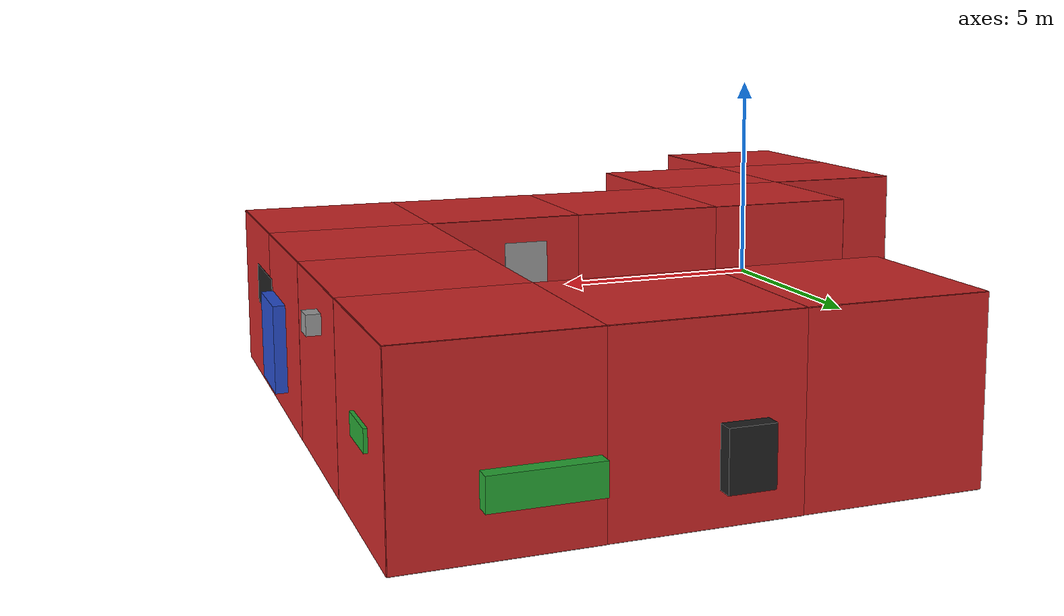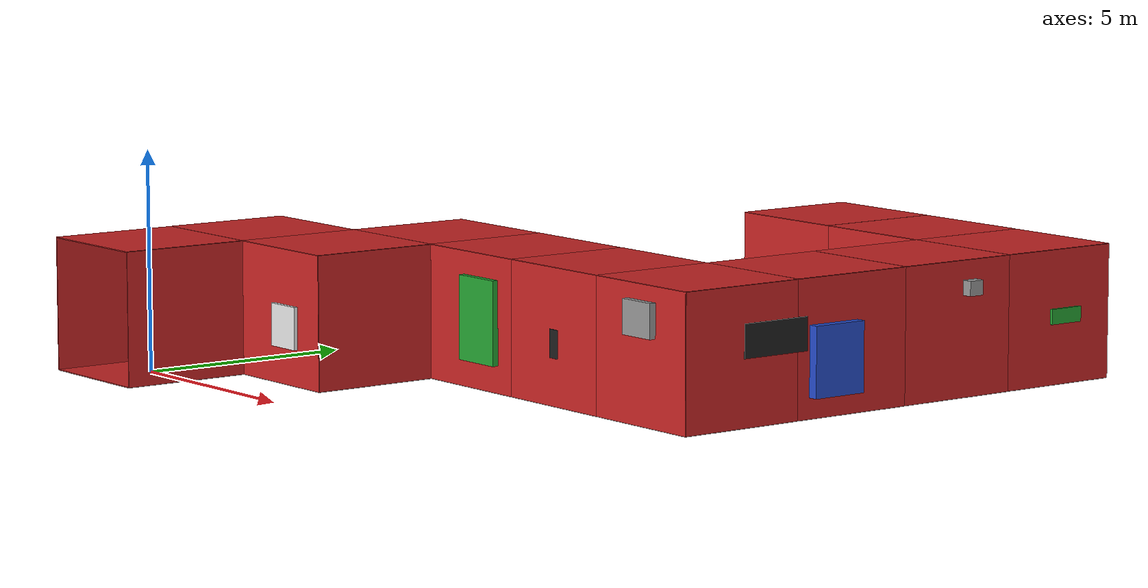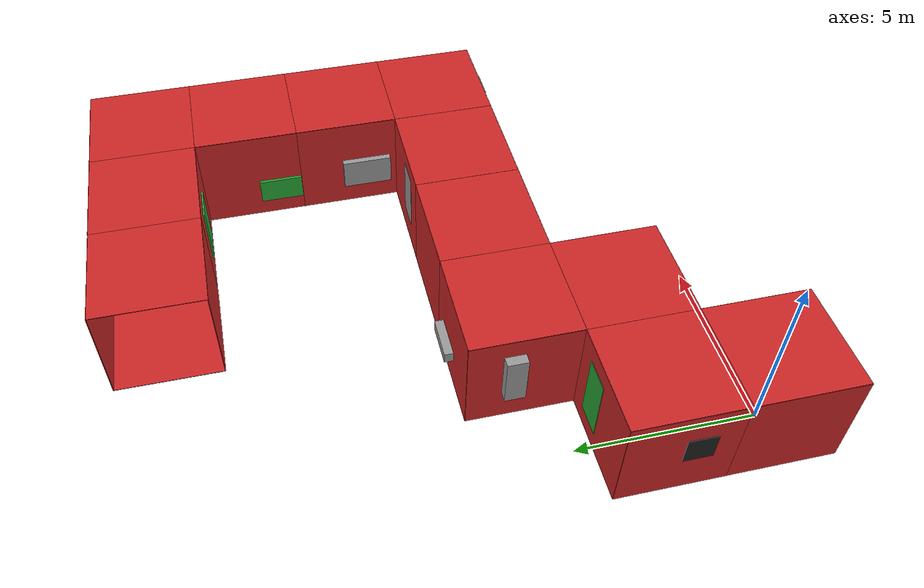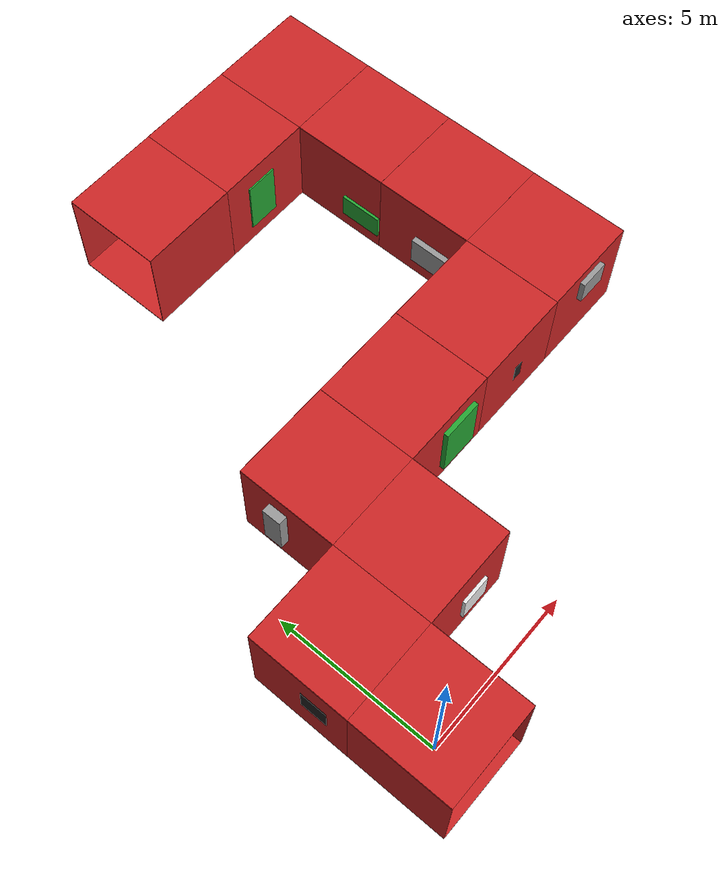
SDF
<?xml version='1.0' encoding='us-ascii'?>
<sdf version="1.6">
  <model name="corridor_red">
    <model name="wall_right_0_0_0_0">
      <static>1</static>
      <pose>1.5 0.0 1.5 0.0 0.0 1.57</pose>
      <link name="link">
        <collision name="collision">
          <geometry>
            <box>
              <size>3 0.02 3</size>
            </box>
          </geometry>
        </collision>
        <visual name="visual">
          <material>
            <script>
              <name>Gazebo/Red</name>
              <uri>file://media/materials/scripts/gazebo.material</uri>
            </script>
          </material>
          <geometry>
            <box>
              <size>3 0.02 3</size>
            </box>
          </geometry>
        </visual>
      </link>
    </model>
    <model name="wall_left_0_0_0_0">
      <static>1</static>
      <pose>-1.5 0.0 1.5 0.0 0.0 1.57</pose>
      <link name="link">
        <collision name="collision">
          <geometry>
            <box>
              <size>3 0.02 3</size>
            </box>
          </geometry>
        </collision>
        <visual name="visual">
          <material>
            <script>
              <name>Gazebo/Red</name>
              <uri>file://media/materials/scripts/gazebo.material</uri>
            </script>
          </material>
          <geometry>
            <box>
              <size>3 0.02 3</size>
            </box>
          </geometry>
        </visual>
      </link>
    </model>
    <model name="wall_top_0_0_0_0">
      <static>1</static>
      <pose>0.0 0.0 3.0 1.57 0.0 0.0</pose>
      <link name="link">
        <collision name="collision">
          <geometry>
            <box>
              <size>3 0.02 3</size>
            </box>
          </geometry>
        </collision>
        <visual name="visual">
          <material>
            <script>
              <name>Gazebo/Red</name>
              <uri>file://media/materials/scripts/gazebo.material</uri>
            </script>
          </material>
          <geometry>
            <box>
              <size>3 0.02 3</size>
            </box>
          </geometry>
        </visual>
      </link>
    </model>
    <model name="wall_bottom_0_0_0_0">
      <static>1</static>
      <pose>0.0 0.0 0.0 1.57 0.0 0.0</pose>
      <link name="link">
        <collision name="collision">
          <geometry>
            <box>
              <size>3 0.02 3</size>
            </box>
          </geometry>
        </collision>
        <visual name="visual">
          <material>
            <script>
              <name>Gazebo/Red</name>
              <uri>file://media/materials/scripts/gazebo.material</uri>
            </script>
          </material>
          <geometry>
            <box>
              <size>3 0.02 3</size>
            </box>
          </geometry>
        </visual>
      </link>
    </model>
    <model name="wall_front_0_1_0_2">
      <static>1</static>
      <pose>0.0 4.5 1.5 0.0 0.0 0.0</pose>
      <link name="link">
        <collision name="collision">
          <geometry>
            <box>
              <size>3 0.02 3</size>
            </box>
          </geometry>
        </collision>
        <visual name="visual">
          <material>
            <script>
              <name>Gazebo/Red</name>
              <uri>file://media/materials/scripts/gazebo.material</uri>
            </script>
          </material>
          <geometry>
            <box>
              <size>3 0.02 3</size>
            </box>
          </geometry>
        </visual>
      </link>
    </model>
    <model name="wall_left_0_1_0_2">
      <static>1</static>
      <pose>-1.5 3.0 1.5 0.0 0.0 1.57</pose>
      <link name="link">
        <collision name="collision">
          <geometry>
            <box>
              <size>3 0.02 3</size>
            </box>
          </geometry>
        </collision>
        <visual name="visual">
          <material>
            <script>
              <name>Gazebo/Red</name>
              <uri>file://media/materials/scripts/gazebo.material</uri>
            </script>
          </material>
          <geometry>
            <box>
              <size>3 0.02 3</size>
            </box>
          </geometry>
        </visual>
      </link>
    </model>
    <model name="wall_top_0_1_0_2">
      <static>1</static>
      <pose>0.0 3.0 3.0 1.57 0.0 0.0</pose>
      <link name="link">
        <collision name="collision">
          <geometry>
            <box>
              <size>3 0.02 3</size>
            </box>
          </geometry>
        </collision>
        <visual name="visual">
          <material>
            <script>
              <name>Gazebo/Red</name>
              <uri>file://media/materials/scripts/gazebo.material</uri>
            </script>
          </material>
          <geometry>
            <box>
              <size>3 0.02 3</size>
            </box>
          </geometry>
        </visual>
      </link>
    </model>
    <model name="wall_bottom_0_1_0_2">
      <static>1</static>
      <pose>0.0 3.0 0.0 1.57 0.0 0.0</pose>
      <link name="link">
        <collision name="collision">
          <geometry>
            <box>
              <size>3 0.02 3</size>
            </box>
          </geometry>
        </collision>
        <visual name="visual">
          <material>
            <script>
              <name>Gazebo/Red</name>
              <uri>file://media/materials/scripts/gazebo.material</uri>
            </script>
          </material>
          <geometry>
            <box>
              <size>3 0.02 3</size>
            </box>
          </geometry>
        </visual>
      </link>
    </model>
    <model name="panel_0_1_0_2">
      <static>1</static>
      <pose>0.4876383830959644 4.5 1.52326022477 0.0 0.0 1.57</pose>
      <link name="link">
        <collision name="collision">
          <geometry>
            <box>
              <size>0.0584948124588 0.864080984062 1.93926806015</size>
            </box>
          </geometry>
        </collision>
        <visual name="visual">
          <material>
            <script>
              <name>Gazebo/Green</name>
              <uri>file://media/materials/scripts/gazebo.material</uri>
            </script>
          </material>
          <geometry>
            <box>
              <size>0.0584948124588 0.864080984062 1.93926806015</size>
            </box>
          </geometry>
        </visual>
      </link>
    </model>
    <model name="panel_0_1_1_2">
      <static>1</static>
      <pose>-1.5 2.524114517279492 1.63612690843 0.0 0.0 0.0</pose>
      <link name="link">
        <collision name="collision">
          <geometry>
            <box>
              <size>0.0458750234112 0.808977795477 0.846938312663</size>
            </box>
          </geometry>
        </collision>
        <visual name="visual">
          <material>
            <script>
              <name>Gazebo/Black</name>
              <uri>file://media/materials/scripts/gazebo.material</uri>
            </script>
          </material>
          <geometry>
            <box>
              <size>0.0458750234112 0.808977795477 0.846938312663</size>
            </box>
          </geometry>
        </visual>
      </link>
    </model>
    <model name="wall_front_1_1_0_3">
      <static>1</static>
      <pose>4.5 3.0 1.5 0.0 0.0 -1.57</pose>
      <link name="link">
        <collision name="collision">
          <geometry>
            <box>
              <size>3 0.02 3</size>
            </box>
          </geometry>
        </collision>
        <visual name="visual">
          <material>
            <script>
              <name>Gazebo/Red</name>
              <uri>file://media/materials/scripts/gazebo.material</uri>
            </script>
          </material>
          <geometry>
            <box>
              <size>3 0.02 3</size>
            </box>
          </geometry>
        </visual>
      </link>
    </model>
    <model name="wall_right_1_1_0_3">
      <static>1</static>
      <pose>3.0 1.5 1.5 0.0 0.0 0.0</pose>
      <link name="link">
        <collision name="collision">
          <geometry>
            <box>
              <size>3 0.02 3</size>
            </box>
          </geometry>
        </collision>
        <visual name="visual">
          <material>
            <script>
              <name>Gazebo/Red</name>
              <uri>file://media/materials/scripts/gazebo.material</uri>
            </script>
          </material>
          <geometry>
            <box>
              <size>3 0.02 3</size>
            </box>
          </geometry>
        </visual>
      </link>
    </model>
    <model name="wall_top_1_1_0_3">
      <static>1</static>
      <pose>3.0 3.0 3.0 1.57 0.0 -1.57</pose>
      <link name="link">
        <collision name="collision">
          <geometry>
            <box>
              <size>3 0.02 3</size>
            </box>
          </geometry>
        </collision>
        <visual name="visual">
          <material>
            <script>
              <name>Gazebo/Red</name>
              <uri>file://media/materials/scripts/gazebo.material</uri>
            </script>
          </material>
          <geometry>
            <box>
              <size>3 0.02 3</size>
            </box>
          </geometry>
        </visual>
      </link>
    </model>
    <model name="wall_bottom_1_1_0_3">
      <static>1</static>
      <pose>3.0 3.0 0.0 1.57 0.0 -1.57</pose>
      <link name="link">
        <collision name="collision">
          <geometry>
            <box>
              <size>3 0.02 3</size>
            </box>
          </geometry>
        </collision>
        <visual name="visual">
          <material>
            <script>
              <name>Gazebo/Red</name>
              <uri>file://media/materials/scripts/gazebo.material</uri>
            </script>
          </material>
          <geometry>
            <box>
              <size>3 0.02 3</size>
            </box>
          </geometry>
        </visual>
      </link>
    </model>
    <model name="panel_1_1_0_3">
      <static>1</static>
      <pose>4.5 3.937428426981451 1.50053618923 0.0 0.0 0.0</pose>
      <link name="link">
        <collision name="collision">
          <geometry>
            <box>
              <size>0.00795916873669 1.45145620996 1.98541961654</size>
            </box>
          </geometry>
        </collision>
        <visual name="visual">
          <material>
            <script>
              <name>Gazebo/White</name>
              <uri>file://media/materials/scripts/gazebo.material</uri>
            </script>
          </material>
          <geometry>
            <box>
              <size>0.00795916873669 1.45145620996 1.98541961654</size>
            </box>
          </geometry>
        </visual>
      </link>
    </model>
    <model name="panel_1_1_1_3">
      <static>1</static>
      <pose>3.2470214756737565 1.5 1.29992574985 0.0 0.0 -1.57</pose>
      <link name="link">
        <collision name="collision">
          <geometry>
            <box>
              <size>0.208442396609 0.89177292086 0.952968831122</size>
            </box>
          </geometry>
        </collision>
        <visual name="visual">
          <material>
            <script>
              <name>Gazebo/White</name>
              <uri>file://media/materials/scripts/gazebo.material</uri>
            </script>
          </material>
          <geometry>
            <box>
              <size>0.208442396609 0.89177292086 0.952968831122</size>
            </box>
          </geometry>
        </visual>
      </link>
    </model>
    <model name="wall_front_1_2_0_2">
      <static>1</static>
      <pose>3.0 7.5 1.5 0.0 0.0 0.0</pose>
      <link name="link">
        <collision name="collision">
          <geometry>
            <box>
              <size>3 0.02 3</size>
            </box>
          </geometry>
        </collision>
        <visual name="visual">
          <material>
            <script>
              <name>Gazebo/Red</name>
              <uri>file://media/materials/scripts/gazebo.material</uri>
            </script>
          </material>
          <geometry>
            <box>
              <size>3 0.02 3</size>
            </box>
          </geometry>
        </visual>
      </link>
    </model>
    <model name="wall_left_1_2_0_2">
      <static>1</static>
      <pose>1.5 6.0 1.5 0.0 0.0 1.57</pose>
      <link name="link">
        <collision name="collision">
          <geometry>
            <box>
              <size>3 0.02 3</size>
            </box>
          </geometry>
        </collision>
        <visual name="visual">
          <material>
            <script>
              <name>Gazebo/Red</name>
              <uri>file://media/materials/scripts/gazebo.material</uri>
            </script>
          </material>
          <geometry>
            <box>
              <size>3 0.02 3</size>
            </box>
          </geometry>
        </visual>
      </link>
    </model>
    <model name="wall_top_1_2_0_2">
      <static>1</static>
      <pose>3.0 6.0 3.0 1.57 0.0 0.0</pose>
      <link name="link">
        <collision name="collision">
          <geometry>
            <box>
              <size>3 0.02 3</size>
            </box>
          </geometry>
        </collision>
        <visual name="visual">
          <material>
            <script>
              <name>Gazebo/Red</name>
              <uri>file://media/materials/scripts/gazebo.material</uri>
            </script>
          </material>
          <geometry>
            <box>
              <size>3 0.02 3</size>
            </box>
          </geometry>
        </visual>
      </link>
    </model>
    <model name="wall_bottom_1_2_0_2">
      <static>1</static>
      <pose>3.0 6.0 0.0 1.57 0.0 0.0</pose>
      <link name="link">
        <collision name="collision">
          <geometry>
            <box>
              <size>3 0.02 3</size>
            </box>
          </geometry>
        </collision>
        <visual name="visual">
          <material>
            <script>
              <name>Gazebo/Red</name>
              <uri>file://media/materials/scripts/gazebo.material</uri>
            </script>
          </material>
          <geometry>
            <box>
              <size>3 0.02 3</size>
            </box>
          </geometry>
        </visual>
      </link>
    </model>
    <model name="panel_1_2_0_2">
      <static>1</static>
      <pose>3.3846590703232984 7.5 1.07951376535 0.0 0.0 1.57</pose>
      <link name="link">
        <collision name="collision">
          <geometry>
            <box>
              <size>0.518996591119 1.16349785954 0.31781337304</size>
            </box>
          </geometry>
        </collision>
        <visual name="visual">
          <material>
            <script>
              <name>Gazebo/Grey</name>
              <uri>file://media/materials/scripts/gazebo.material</uri>
            </script>
          </material>
          <geometry>
            <box>
              <size>0.518996591119 1.16349785954 0.31781337304</size>
            </box>
          </geometry>
        </visual>
      </link>
    </model>
    <model name="panel_1_2_1_2">
      <static>1</static>
      <pose>1.5 6.279878301027605 1.72428075465 0.0 0.0 0.0</pose>
      <link name="link">
        <collision name="collision">
          <geometry>
            <box>
              <size>0.547609790871 0.568058080781 1.4722479816</size>
            </box>
          </geometry>
        </collision>
        <visual name="visual">
          <material>
            <script>
              <name>Gazebo/Grey</name>
              <uri>file://media/materials/scripts/gazebo.material</uri>
            </script>
          </material>
          <geometry>
            <box>
              <size>0.547609790871 0.568058080781 1.4722479816</size>
            </box>
          </geometry>
        </visual>
      </link>
    </model>
    <model name="wall_right_2_2_0_1">
      <static>1</static>
      <pose>6.0 4.5 1.5 0.0 0.0 0.0</pose>
      <link name="link">
        <collision name="collision">
          <geometry>
            <box>
              <size>3 0.02 3</size>
            </box>
          </geometry>
        </collision>
        <visual name="visual">
          <material>
            <script>
              <name>Gazebo/Red</name>
              <uri>file://media/materials/scripts/gazebo.material</uri>
            </script>
          </material>
          <geometry>
            <box>
              <size>3 0.02 3</size>
            </box>
          </geometry>
        </visual>
      </link>
    </model>
    <model name="wall_left_2_2_0_1">
      <static>1</static>
      <pose>6.0 7.5 1.5 0.0 0.0 0.0</pose>
      <link name="link">
        <collision name="collision">
          <geometry>
            <box>
              <size>3 0.02 3</size>
            </box>
          </geometry>
        </collision>
        <visual name="visual">
          <material>
            <script>
              <name>Gazebo/Red</name>
              <uri>file://media/materials/scripts/gazebo.material</uri>
            </script>
          </material>
          <geometry>
            <box>
              <size>3 0.02 3</size>
            </box>
          </geometry>
        </visual>
      </link>
    </model>
    <model name="wall_top_2_2_0_1">
      <static>1</static>
      <pose>6.0 6.0 3.0 1.57 0.0 -1.57</pose>
      <link name="link">
        <collision name="collision">
          <geometry>
            <box>
              <size>3 0.02 3</size>
            </box>
          </geometry>
        </collision>
        <visual name="visual">
          <material>
            <script>
              <name>Gazebo/Red</name>
              <uri>file://media/materials/scripts/gazebo.material</uri>
            </script>
          </material>
          <geometry>
            <box>
              <size>3 0.02 3</size>
            </box>
          </geometry>
        </visual>
      </link>
    </model>
    <model name="wall_bottom_2_2_0_1">
      <static>1</static>
      <pose>6.0 6.0 0.0 1.57 0.0 -1.57</pose>
      <link name="link">
        <collision name="collision">
          <geometry>
            <box>
              <size>3 0.02 3</size>
            </box>
          </geometry>
        </collision>
        <visual name="visual">
          <material>
            <script>
              <name>Gazebo/Red</name>
              <uri>file://media/materials/scripts/gazebo.material</uri>
            </script>
          </material>
          <geometry>
            <box>
              <size>3 0.02 3</size>
            </box>
          </geometry>
        </visual>
      </link>
    </model>
    <model name="panel_2_2_0_1">
      <static>1</static>
      <pose>6.389846216012998 4.5 1.54685048137 0.0 0.0 -1.57</pose>
      <link name="link">
        <collision name="collision">
          <geometry>
            <box>
              <size>0.301135779482 1.24315996358 1.88122884583</size>
            </box>
          </geometry>
        </collision>
        <visual name="visual">
          <material>
            <script>
              <name>Gazebo/Green</name>
              <uri>file://media/materials/scripts/gazebo.material</uri>
            </script>
          </material>
          <geometry>
            <box>
              <size>0.301135779482 1.24315996358 1.88122884583</size>
            </box>
          </geometry>
        </visual>
      </link>
    </model>
    <model name="panel_2_2_1_1">
      <static>1</static>
      <pose>5.695948991457327 7.5 1.54693634411 0.0 0.0 -1.57</pose>
      <link name="link">
        <collision name="collision">
          <geometry>
            <box>
              <size>0.00362267179889 0.754307755078 1.92734548681</size>
            </box>
          </geometry>
        </collision>
        <visual name="visual">
          <material>
            <script>
              <name>Gazebo/Black</name>
              <uri>file://media/materials/scripts/gazebo.material</uri>
            </script>
          </material>
          <geometry>
            <box>
              <size>0.00362267179889 0.754307755078 1.92734548681</size>
            </box>
          </geometry>
        </visual>
      </link>
    </model>
    <model name="wall_right_3_2_0_1">
      <static>1</static>
      <pose>9.0 4.5 1.5 0.0 0.0 0.0</pose>
      <link name="link">
        <collision name="collision">
          <geometry>
            <box>
              <size>3 0.02 3</size>
            </box>
          </geometry>
        </collision>
        <visual name="visual">
          <material>
            <script>
              <name>Gazebo/Red</name>
              <uri>file://media/materials/scripts/gazebo.material</uri>
            </script>
          </material>
          <geometry>
            <box>
              <size>3 0.02 3</size>
            </box>
          </geometry>
        </visual>
      </link>
    </model>
    <model name="wall_left_3_2_0_1">
      <static>1</static>
      <pose>9.0 7.5 1.5 0.0 0.0 0.0</pose>
      <link name="link">
        <collision name="collision">
          <geometry>
            <box>
              <size>3 0.02 3</size>
            </box>
          </geometry>
        </collision>
        <visual name="visual">
          <material>
            <script>
              <name>Gazebo/Red</name>
              <uri>file://media/materials/scripts/gazebo.material</uri>
            </script>
          </material>
          <geometry>
            <box>
              <size>3 0.02 3</size>
            </box>
          </geometry>
        </visual>
      </link>
    </model>
    <model name="wall_top_3_2_0_1">
      <static>1</static>
      <pose>9.0 6.0 3.0 1.57 0.0 -1.57</pose>
      <link name="link">
        <collision name="collision">
          <geometry>
            <box>
              <size>3 0.02 3</size>
            </box>
          </geometry>
        </collision>
        <visual name="visual">
          <material>
            <script>
              <name>Gazebo/Red</name>
              <uri>file://media/materials/scripts/gazebo.material</uri>
            </script>
          </material>
          <geometry>
            <box>
              <size>3 0.02 3</size>
            </box>
          </geometry>
        </visual>
      </link>
    </model>
    <model name="wall_bottom_3_2_0_1">
      <static>1</static>
      <pose>9.0 6.0 0.0 1.57 0.0 -1.57</pose>
      <link name="link">
        <collision name="collision">
          <geometry>
            <box>
              <size>3 0.02 3</size>
            </box>
          </geometry>
        </collision>
        <visual name="visual">
          <material>
            <script>
              <name>Gazebo/Red</name>
              <uri>file://media/materials/scripts/gazebo.material</uri>
            </script>
          </material>
          <geometry>
            <box>
              <size>3 0.02 3</size>
            </box>
          </geometry>
        </visual>
      </link>
    </model>
    <model name="panel_3_2_0_1">
      <static>1</static>
      <pose>9.031169087945512 4.5 1.35219517973 0.0 0.0 -1.57</pose>
      <link name="link">
        <collision name="collision">
          <geometry>
            <box>
              <size>0.0353173529678 0.295151467186 0.625915932479</size>
            </box>
          </geometry>
        </collision>
        <visual name="visual">
          <material>
            <script>
              <name>Gazebo/Black</name>
              <uri>file://media/materials/scripts/gazebo.material</uri>
            </script>
          </material>
          <geometry>
            <box>
              <size>0.0353173529678 0.295151467186 0.625915932479</size>
            </box>
          </geometry>
        </visual>
      </link>
    </model>
    <model name="panel_3_2_1_1">
      <static>1</static>
      <pose>8.591021867561096 7.5 1.63821168493 0.0 0.0 -1.57</pose>
      <link name="link">
        <collision name="collision">
          <geometry>
            <box>
              <size>0.0320249618222 0.857610461183 1.79263647595</size>
            </box>
          </geometry>
        </collision>
        <visual name="visual">
          <material>
            <script>
              <name>Gazebo/Grey</name>
              <uri>file://media/materials/scripts/gazebo.material</uri>
            </script>
          </material>
          <geometry>
            <box>
              <size>0.0320249618222 0.857610461183 1.79263647595</size>
            </box>
          </geometry>
        </visual>
      </link>
    </model>
    <model name="wall_front_4_2_0_3">
      <static>1</static>
      <pose>13.5 6.0 1.5 0.0 0.0 -1.57</pose>
      <link name="link">
        <collision name="collision">
          <geometry>
            <box>
              <size>3 0.02 3</size>
            </box>
          </geometry>
        </collision>
        <visual name="visual">
          <material>
            <script>
              <name>Gazebo/Red</name>
              <uri>file://media/materials/scripts/gazebo.material</uri>
            </script>
          </material>
          <geometry>
            <box>
              <size>3 0.02 3</size>
            </box>
          </geometry>
        </visual>
      </link>
    </model>
    <model name="wall_right_4_2_0_3">
      <static>1</static>
      <pose>12.0 4.5 1.5 0.0 0.0 0.0</pose>
      <link name="link">
        <collision name="collision">
          <geometry>
            <box>
              <size>3 0.02 3</size>
            </box>
          </geometry>
        </collision>
        <visual name="visual">
          <material>
            <script>
              <name>Gazebo/Red</name>
              <uri>file://media/materials/scripts/gazebo.material</uri>
            </script>
          </material>
          <geometry>
            <box>
              <size>3 0.02 3</size>
            </box>
          </geometry>
        </visual>
      </link>
    </model>
    <model name="wall_top_4_2_0_3">
      <static>1</static>
      <pose>12.0 6.0 3.0 1.57 0.0 -1.57</pose>
      <link name="link">
        <collision name="collision">
          <geometry>
            <box>
              <size>3 0.02 3</size>
            </box>
          </geometry>
        </collision>
        <visual name="visual">
          <material>
            <script>
              <name>Gazebo/Red</name>
              <uri>file://media/materials/scripts/gazebo.material</uri>
            </script>
          </material>
          <geometry>
            <box>
              <size>3 0.02 3</size>
            </box>
          </geometry>
        </visual>
      </link>
    </model>
    <model name="wall_bottom_4_2_0_3">
      <static>1</static>
      <pose>12.0 6.0 0.0 1.57 0.0 -1.57</pose>
      <link name="link">
        <collision name="collision">
          <geometry>
            <box>
              <size>3 0.02 3</size>
            </box>
          </geometry>
        </collision>
        <visual name="visual">
          <material>
            <script>
              <name>Gazebo/Red</name>
              <uri>file://media/materials/scripts/gazebo.material</uri>
            </script>
          </material>
          <geometry>
            <box>
              <size>3 0.02 3</size>
            </box>
          </geometry>
        </visual>
      </link>
    </model>
    <model name="panel_4_2_0_3">
      <static>1</static>
      <pose>12.052694535544962 4.5 2.28153145832 0.0 0.0 -1.57</pose>
      <link name="link">
        <collision name="collision">
          <geometry>
            <box>
              <size>0.319829865512 0.918850040523 0.760389949972</size>
            </box>
          </geometry>
        </collision>
        <visual name="visual">
          <material>
            <script>
              <name>Gazebo/Grey</name>
              <uri>file://media/materials/scripts/gazebo.material</uri>
            </script>
          </material>
          <geometry>
            <box>
              <size>0.319829865512 0.918850040523 0.760389949972</size>
            </box>
          </geometry>
        </visual>
      </link>
    </model>
    <model name="panel_4_2_1_3">
      <static>1</static>
      <pose>13.5 6.902697482706962 1.83159199995 0.0 0.0 0.0</pose>
      <link name="link">
        <collision name="collision">
          <geometry>
            <box>
              <size>0.0441243756648 1.70246559824 0.736742439802</size>
            </box>
          </geometry>
        </collision>
        <visual name="visual">
          <material>
            <script>
              <name>Gazebo/Black</name>
              <uri>file://media/materials/scripts/gazebo.material</uri>
            </script>
          </material>
          <geometry>
            <box>
              <size>0.0441243756648 1.70246559824 0.736742439802</size>
            </box>
          </geometry>
        </visual>
      </link>
    </model>
    <model name="wall_right_4_3_0_1">
      <static>1</static>
      <pose>13.5 9.0 1.5 0.0 0.0 1.57</pose>
      <link name="link">
        <collision name="collision">
          <geometry>
            <box>
              <size>3 0.02 3</size>
            </box>
          </geometry>
        </collision>
        <visual name="visual">
          <material>
            <script>
              <name>Gazebo/Red</name>
              <uri>file://media/materials/scripts/gazebo.material</uri>
            </script>
          </material>
          <geometry>
            <box>
              <size>3 0.02 3</size>
            </box>
          </geometry>
        </visual>
      </link>
    </model>
    <model name="wall_left_4_3_0_1">
      <static>1</static>
      <pose>10.5 9.0 1.5 0.0 0.0 1.57</pose>
      <link name="link">
        <collision name="collision">
          <geometry>
            <box>
              <size>3 0.02 3</size>
            </box>
          </geometry>
        </collision>
        <visual name="visual">
          <material>
            <script>
              <name>Gazebo/Red</name>
              <uri>file://media/materials/scripts/gazebo.material</uri>
            </script>
          </material>
          <geometry>
            <box>
              <size>3 0.02 3</size>
            </box>
          </geometry>
        </visual>
      </link>
    </model>
    <model name="wall_top_4_3_0_1">
      <static>1</static>
      <pose>12.0 9.0 3.0 1.57 0.0 0.0</pose>
      <link name="link">
        <collision name="collision">
          <geometry>
            <box>
              <size>3 0.02 3</size>
            </box>
          </geometry>
        </collision>
        <visual name="visual">
          <material>
            <script>
              <name>Gazebo/Red</name>
              <uri>file://media/materials/scripts/gazebo.material</uri>
            </script>
          </material>
          <geometry>
            <box>
              <size>3 0.02 3</size>
            </box>
          </geometry>
        </visual>
      </link>
    </model>
    <model name="wall_bottom_4_3_0_1">
      <static>1</static>
      <pose>12.0 9.0 0.0 1.57 0.0 0.0</pose>
      <link name="link">
        <collision name="collision">
          <geometry>
            <box>
              <size>3 0.02 3</size>
            </box>
          </geometry>
        </collision>
        <visual name="visual">
          <material>
            <script>
              <name>Gazebo/Red</name>
              <uri>file://media/materials/scripts/gazebo.material</uri>
            </script>
          </material>
          <geometry>
            <box>
              <size>3 0.02 3</size>
            </box>
          </geometry>
        </visual>
      </link>
    </model>
    <model name="panel_4_3_0_1">
      <static>1</static>
      <pose>13.5 8.487378768502555 1.23135363412 0.0 0.0 0.0</pose>
      <link name="link">
        <collision name="collision">
          <geometry>
            <box>
              <size>0.452088466389 1.32208264841 1.5468302264</size>
            </box>
          </geometry>
        </collision>
        <visual name="visual">
          <material>
            <script>
              <name>Gazebo/Blue</name>
              <uri>file://media/materials/scripts/gazebo.material</uri>
            </script>
          </material>
          <geometry>
            <box>
              <size>0.452088466389 1.32208264841 1.5468302264</size>
            </box>
          </geometry>
        </visual>
      </link>
    </model>
    <model name="panel_4_3_1_1">
      <static>1</static>
      <pose>10.5 8.447950710701582 1.20363599716 0.0 0.0 0.0</pose>
      <link name="link">
        <collision name="collision">
          <geometry>
            <box>
              <size>0.378508342164 1.47639165066 0.925447817127</size>
            </box>
          </geometry>
        </collision>
        <visual name="visual">
          <material>
            <script>
              <name>Gazebo/Grey</name>
              <uri>file://media/materials/scripts/gazebo.material</uri>
            </script>
          </material>
          <geometry>
            <box>
              <size>0.378508342164 1.47639165066 0.925447817127</size>
            </box>
          </geometry>
        </visual>
      </link>
    </model>
    <model name="wall_right_4_4_0_1">
      <static>1</static>
      <pose>13.5 12.0 1.5 0.0 0.0 1.57</pose>
      <link name="link">
        <collision name="collision">
          <geometry>
            <box>
              <size>3 0.02 3</size>
            </box>
          </geometry>
        </collision>
        <visual name="visual">
          <material>
            <script>
              <name>Gazebo/Red</name>
              <uri>file://media/materials/scripts/gazebo.material</uri>
            </script>
          </material>
          <geometry>
            <box>
              <size>3 0.02 3</size>
            </box>
          </geometry>
        </visual>
      </link>
    </model>
    <model name="wall_left_4_4_0_1">
      <static>1</static>
      <pose>10.5 12.0 1.5 0.0 0.0 1.57</pose>
      <link name="link">
        <collision name="collision">
          <geometry>
            <box>
              <size>3 0.02 3</size>
            </box>
          </geometry>
        </collision>
        <visual name="visual">
          <material>
            <script>
              <name>Gazebo/Red</name>
              <uri>file://media/materials/scripts/gazebo.material</uri>
            </script>
          </material>
          <geometry>
            <box>
              <size>3 0.02 3</size>
            </box>
          </geometry>
        </visual>
      </link>
    </model>
    <model name="wall_top_4_4_0_1">
      <static>1</static>
      <pose>12.0 12.0 3.0 1.57 0.0 0.0</pose>
      <link name="link">
        <collision name="collision">
          <geometry>
            <box>
              <size>3 0.02 3</size>
            </box>
          </geometry>
        </collision>
        <visual name="visual">
          <material>
            <script>
              <name>Gazebo/Red</name>
              <uri>file://media/materials/scripts/gazebo.material</uri>
            </script>
          </material>
          <geometry>
            <box>
              <size>3 0.02 3</size>
            </box>
          </geometry>
        </visual>
      </link>
    </model>
    <model name="wall_bottom_4_4_0_1">
      <static>1</static>
      <pose>12.0 12.0 0.0 1.57 0.0 0.0</pose>
      <link name="link">
        <collision name="collision">
          <geometry>
            <box>
              <size>3 0.02 3</size>
            </box>
          </geometry>
        </collision>
        <visual name="visual">
          <material>
            <script>
              <name>Gazebo/Red</name>
              <uri>file://media/materials/scripts/gazebo.material</uri>
            </script>
          </material>
          <geometry>
            <box>
              <size>3 0.02 3</size>
            </box>
          </geometry>
        </visual>
      </link>
    </model>
    <model name="panel_4_4_0_1">
      <static>1</static>
      <pose>13.5 12.33362748627848 2.40578579274 0.0 0.0 0.0</pose>
      <link name="link">
        <collision name="collision">
          <geometry>
            <box>
              <size>0.491218700741 0.372775627764 0.328603373599</size>
            </box>
          </geometry>
        </collision>
        <visual name="visual">
          <material>
            <script>
              <name>Gazebo/Grey</name>
              <uri>file://media/materials/scripts/gazebo.material</uri>
            </script>
          </material>
          <geometry>
            <box>
              <size>0.491218700741 0.372775627764 0.328603373599</size>
            </box>
          </geometry>
        </visual>
      </link>
    </model>
    <model name="panel_4_4_1_1">
      <static>1</static>
      <pose>10.5 11.15307459510259 0.941465325075 0.0 0.0 0.0</pose>
      <link name="link">
        <collision name="collision">
          <geometry>
            <box>
              <size>0.193776598461 1.28866474188 0.769731560187</size>
            </box>
          </geometry>
        </collision>
        <visual name="visual">
          <material>
            <script>
              <name>Gazebo/Green</name>
              <uri>file://media/materials/scripts/gazebo.material</uri>
            </script>
          </material>
          <geometry>
            <box>
              <size>0.193776598461 1.28866474188 0.769731560187</size>
            </box>
          </geometry>
        </visual>
      </link>
    </model>
    <model name="wall_front_4_5_0_3">
      <static>1</static>
      <pose>12.0 16.5 1.5 0.0 0.0 0.0</pose>
      <link name="link">
        <collision name="collision">
          <geometry>
            <box>
              <size>3 0.02 3</size>
            </box>
          </geometry>
        </collision>
        <visual name="visual">
          <material>
            <script>
              <name>Gazebo/Red</name>
              <uri>file://media/materials/scripts/gazebo.material</uri>
            </script>
          </material>
          <geometry>
            <box>
              <size>3 0.02 3</size>
            </box>
          </geometry>
        </visual>
      </link>
    </model>
    <model name="wall_right_4_5_0_3">
      <static>1</static>
      <pose>13.5 15.0 1.5 0.0 0.0 1.57</pose>
      <link name="link">
        <collision name="collision">
          <geometry>
            <box>
              <size>3 0.02 3</size>
            </box>
          </geometry>
        </collision>
        <visual name="visual">
          <material>
            <script>
              <name>Gazebo/Red</name>
              <uri>file://media/materials/scripts/gazebo.material</uri>
            </script>
          </material>
          <geometry>
            <box>
              <size>3 0.02 3</size>
            </box>
          </geometry>
        </visual>
      </link>
    </model>
    <model name="wall_top_4_5_0_3">
      <static>1</static>
      <pose>12.0 15.0 3.0 1.57 0.0 0.0</pose>
      <link name="link">
        <collision name="collision">
          <geometry>
            <box>
              <size>3 0.02 3</size>
            </box>
          </geometry>
        </collision>
        <visual name="visual">
          <material>
            <script>
              <name>Gazebo/Red</name>
              <uri>file://media/materials/scripts/gazebo.material</uri>
            </script>
          </material>
          <geometry>
            <box>
              <size>3 0.02 3</size>
            </box>
          </geometry>
        </visual>
      </link>
    </model>
    <model name="wall_bottom_4_5_0_3">
      <static>1</static>
      <pose>12.0 15.0 0.0 1.57 0.0 0.0</pose>
      <link name="link">
        <collision name="collision">
          <geometry>
            <box>
              <size>3 0.02 3</size>
            </box>
          </geometry>
        </collision>
        <visual name="visual">
          <material>
            <script>
              <name>Gazebo/Red</name>
              <uri>file://media/materials/scripts/gazebo.material</uri>
            </script>
          </material>
          <geometry>
            <box>
              <size>3 0.02 3</size>
            </box>
          </geometry>
        </visual>
      </link>
    </model>
    <model name="panel_4_5_0_3">
      <static>1</static>
      <pose>13.5 15.177014167586677 1.52471770732 0.0 0.0 0.0</pose>
      <link name="link">
        <collision name="collision">
          <geometry>
            <box>
              <size>0.142617987249 0.870041198944 0.34117320357</size>
            </box>
          </geometry>
        </collision>
        <visual name="visual">
          <material>
            <script>
              <name>Gazebo/Green</name>
              <uri>file://media/materials/scripts/gazebo.material</uri>
            </script>
          </material>
          <geometry>
            <box>
              <size>0.142617987249 0.870041198944 0.34117320357</size>
            </box>
          </geometry>
        </visual>
      </link>
    </model>
    <model name="panel_4_5_1_3">
      <static>1</static>
      <pose>11.420487914309255 16.5 1.00389569712 0.0 0.0 1.57</pose>
      <link name="link">
        <collision name="collision">
          <geometry>
            <box>
              <size>0.529991707741 1.69585432734 0.508777617637</size>
            </box>
          </geometry>
        </collision>
        <visual name="visual">
          <material>
            <script>
              <name>Gazebo/Green</name>
              <uri>file://media/materials/scripts/gazebo.material</uri>
            </script>
          </material>
          <geometry>
            <box>
              <size>0.529991707741 1.69585432734 0.508777617637</size>
            </box>
          </geometry>
        </visual>
      </link>
    </model>
    <model name="wall_right_3_5_0_1">
      <static>1</static>
      <pose>9.0 16.5 1.5 0.0 0.0 3.14</pose>
      <link name="link">
        <collision name="collision">
          <geometry>
            <box>
              <size>3 0.02 3</size>
            </box>
          </geometry>
        </collision>
        <visual name="visual">
          <material>
            <script>
              <name>Gazebo/Red</name>
              <uri>file://media/materials/scripts/gazebo.material</uri>
            </script>
          </material>
          <geometry>
            <box>
              <size>3 0.02 3</size>
            </box>
          </geometry>
        </visual>
      </link>
    </model>
    <model name="wall_left_3_5_0_1">
      <static>1</static>
      <pose>9.0 13.5 1.5 0.0 0.0 3.14</pose>
      <link name="link">
        <collision name="collision">
          <geometry>
            <box>
              <size>3 0.02 3</size>
            </box>
          </geometry>
        </collision>
        <visual name="visual">
          <material>
            <script>
              <name>Gazebo/Red</name>
              <uri>file://media/materials/scripts/gazebo.material</uri>
            </script>
          </material>
          <geometry>
            <box>
              <size>3 0.02 3</size>
            </box>
          </geometry>
        </visual>
      </link>
    </model>
    <model name="wall_top_3_5_0_1">
      <static>1</static>
      <pose>9.0 15.0 3.0 1.57 0.0 1.57</pose>
      <link name="link">
        <collision name="collision">
          <geometry>
            <box>
              <size>3 0.02 3</size>
            </box>
          </geometry>
        </collision>
        <visual name="visual">
          <material>
            <script>
              <name>Gazebo/Red</name>
              <uri>file://media/materials/scripts/gazebo.material</uri>
            </script>
          </material>
          <geometry>
            <box>
              <size>3 0.02 3</size>
            </box>
          </geometry>
        </visual>
      </link>
    </model>
    <model name="wall_bottom_3_5_0_1">
      <static>1</static>
      <pose>9.0 15.0 0.0 1.57 0.0 1.57</pose>
      <link name="link">
        <collision name="collision">
          <geometry>
            <box>
              <size>3 0.02 3</size>
            </box>
          </geometry>
        </collision>
        <visual name="visual">
          <material>
            <script>
              <name>Gazebo/Red</name>
              <uri>file://media/materials/scripts/gazebo.material</uri>
            </script>
          </material>
          <geometry>
            <box>
              <size>3 0.02 3</size>
            </box>
          </geometry>
        </visual>
      </link>
    </model>
    <model name="panel_3_5_0_1">
      <static>1</static>
      <pose>8.457143840911618 16.5 1.02262445251 0.0 0.0 1.57</pose>
      <link name="link">
        <collision name="collision">
          <geometry>
            <box>
              <size>0.557092267112 0.742877293085 0.954807972263</size>
            </box>
          </geometry>
        </collision>
        <visual name="visual">
          <material>
            <script>
              <name>Gazebo/Black</name>
              <uri>file://media/materials/scripts/gazebo.material</uri>
            </script>
          </material>
          <geometry>
            <box>
              <size>0.557092267112 0.742877293085 0.954807972263</size>
            </box>
          </geometry>
        </visual>
      </link>
    </model>
    <model name="panel_3_5_1_1">
      <static>1</static>
      <pose>8.805042125950548 13.5 1.43493822484 0.0 0.0 1.57</pose>
      <link name="link">
        <collision name="collision">
          <geometry>
            <box>
              <size>0.105957206117 0.990630121565 1.76903620187</size>
            </box>
          </geometry>
        </collision>
        <visual name="visual">
          <material>
            <script>
              <name>Gazebo/Green</name>
              <uri>file://media/materials/scripts/gazebo.material</uri>
            </script>
          </material>
          <geometry>
            <box>
              <size>0.105957206117 0.990630121565 1.76903620187</size>
            </box>
          </geometry>
        </visual>
      </link>
    </model>
    <model name="wall_right_2_5_0_4">
      <static>1</static>
      <pose>6.0 16.5 1.5 0.0 0.0 3.14</pose>
      <link name="link">
        <collision name="collision">
          <geometry>
            <box>
              <size>3 0.02 3</size>
            </box>
          </geometry>
        </collision>
        <visual name="visual">
          <material>
            <script>
              <name>Gazebo/Red</name>
              <uri>file://media/materials/scripts/gazebo.material</uri>
            </script>
          </material>
          <geometry>
            <box>
              <size>3 0.02 3</size>
            </box>
          </geometry>
        </visual>
      </link>
    </model>
    <model name="wall_left_2_5_0_4">
      <static>1</static>
      <pose>6.0 13.5 1.5 0.0 0.0 3.14</pose>
      <link name="link">
        <collision name="collision">
          <geometry>
            <box>
              <size>3 0.02 3</size>
            </box>
          </geometry>
        </collision>
        <visual name="visual">
          <material>
            <script>
              <name>Gazebo/Red</name>
              <uri>file://media/materials/scripts/gazebo.material</uri>
            </script>
          </material>
          <geometry>
            <box>
              <size>3 0.02 3</size>
            </box>
          </geometry>
        </visual>
      </link>
    </model>
    <model name="wall_top_2_5_0_4">
      <static>1</static>
      <pose>6.0 15.0 3.0 1.57 0.0 1.57</pose>
      <link name="link">
        <collision name="collision">
          <geometry>
            <box>
              <size>3 0.02 3</size>
            </box>
          </geometry>
        </collision>
        <visual name="visual">
          <material>
            <script>
              <name>Gazebo/Red</name>
              <uri>file://media/materials/scripts/gazebo.material</uri>
            </script>
          </material>
          <geometry>
            <box>
              <size>3 0.02 3</size>
            </box>
          </geometry>
        </visual>
      </link>
    </model>
    <model name="wall_bottom_2_5_0_4">
      <static>1</static>
      <pose>6.0 15.0 0.0 1.57 0.0 1.57</pose>
      <link name="link">
        <collision name="collision">
          <geometry>
            <box>
              <size>3 0.02 3</size>
            </box>
          </geometry>
        </collision>
        <visual name="visual">
          <material>
            <script>
              <name>Gazebo/Red</name>
              <uri>file://media/materials/scripts/gazebo.material</uri>
            </script>
          </material>
          <geometry>
            <box>
              <size>3 0.02 3</size>
            </box>
          </geometry>
        </visual>
      </link>
    </model>
  </model>
</sdf>
